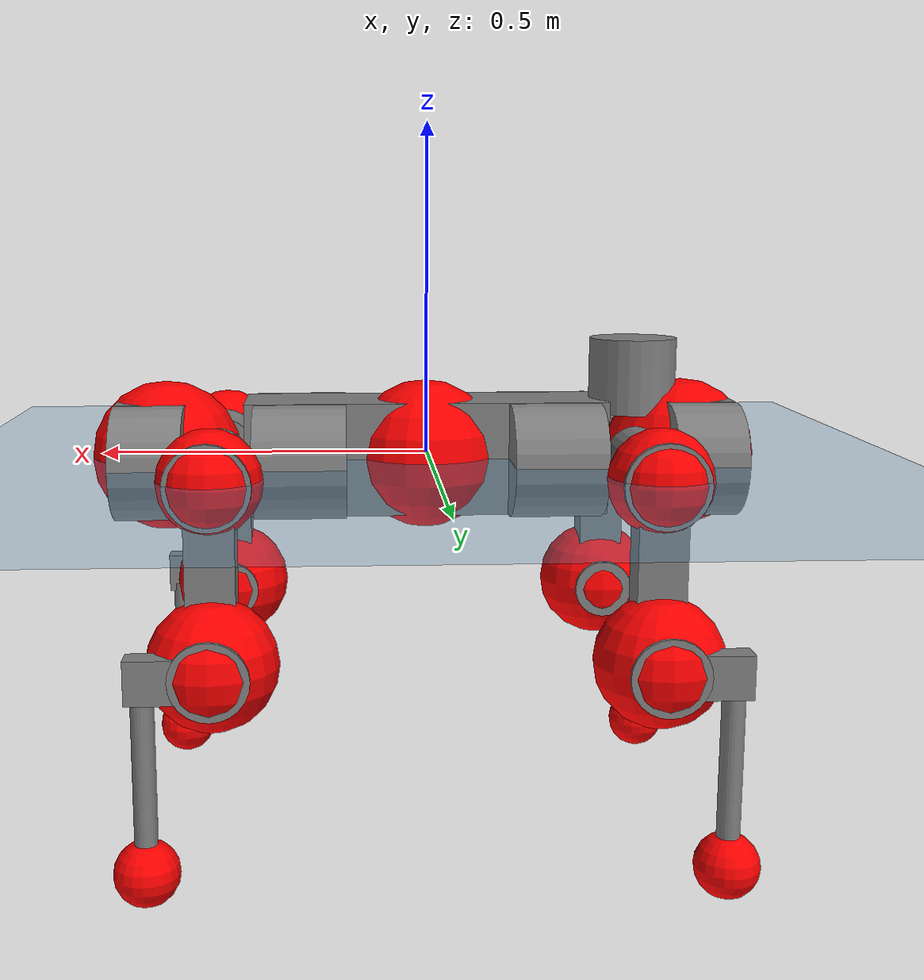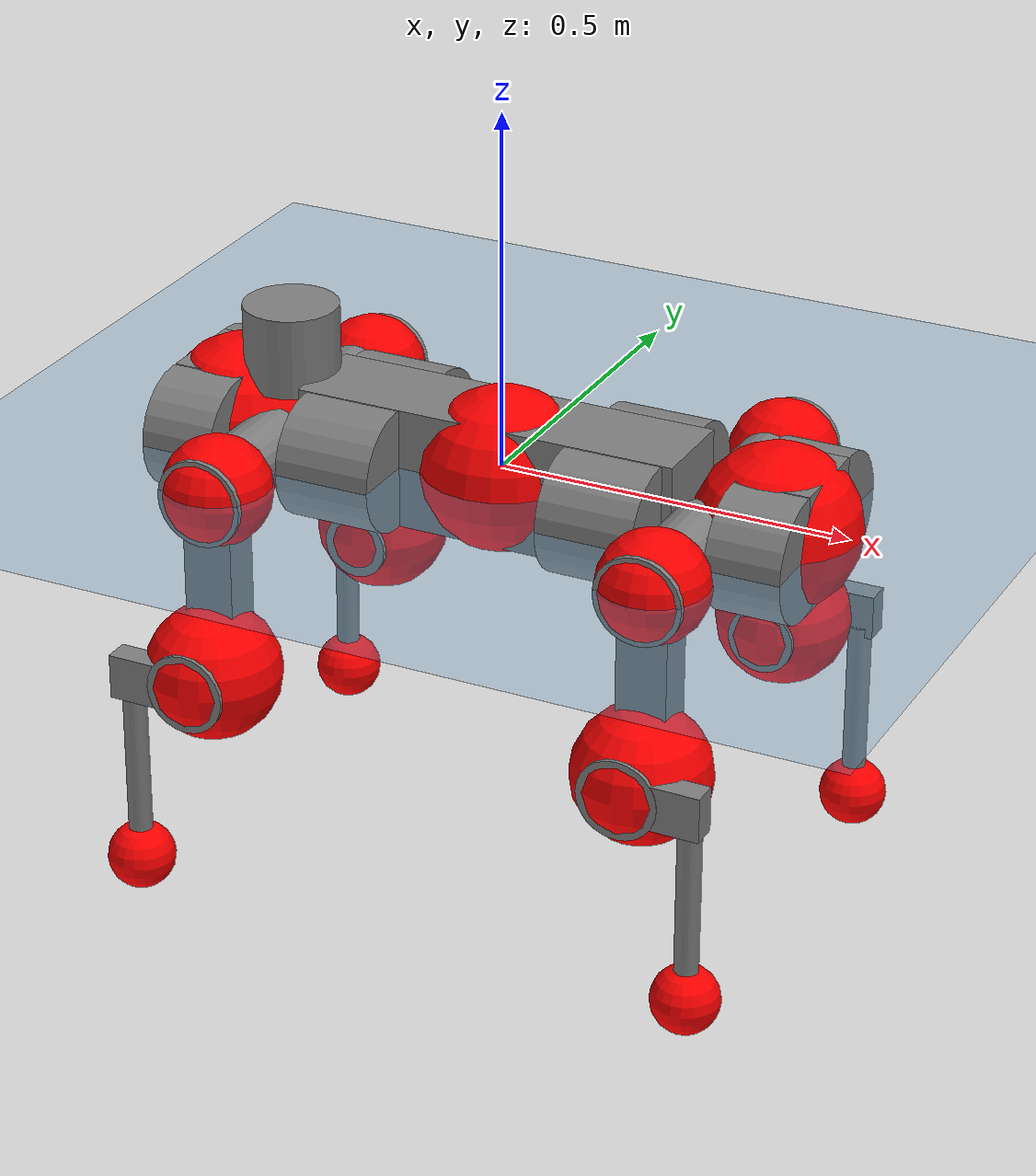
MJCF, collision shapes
<mujoco model="anymal_c">
  <compiler angle="radian" assetdir="assets" balanceinertia="true" inertiafromgeom="false"/>

  <option timestep="0.005" density="1.2" viscosity="2e-05"/>

  <size nkey="1"/>

  <visual>
    <quality shadowsize="8192"/>
    <map shadowclip="0.5"/>
  </visual>

  <default>
    <default class="/">
      <material specular="0" shininess="0.25"/>
      <geom contype="0" conaffinity="0" group="1" solref="-1000 -80"/>
      <site size="0.01 0.005 0.005" group="5"/>
      <general forcelimited="true" forcerange="-80 80" biastype="affine" gainprm="80" biasprm="0 -80 -2"/>
      <default class="anymal_c">
        <joint armature="0.01" damping="0.01" frictionloss="0.1"/>
        <default class="visual">
          <geom type="mesh" group="2"/>
          <default class="visual_zflip"/>
        </default>
        <default class="collision">
          <geom type="cylinder" group="3"/>
          <default class="foot">
            <geom size="0.03 0 0" type="sphere" condim="6" priority="1" friction="0.8 0.02 0.01" solimp="0.015 1 0.03"/>
          </default>
        </default>
      </default>
      <default class="reward_collision_sphere">
        <geom group="5" rgba="1 0 0 1"/>
      </default>
    </default>
  </default>

  <asset>
    <texture type="skybox" colorspace="auto" name="//unnamed_texture_0" builtin="gradient" rgb1="0.95 0.95 0.95" rgb2="0.95 0.95 0.95" width="100" height="600"/>
    <texture type="2d" colorspace="auto" name="texplane" builtin="checker" rgb1="0.345 0.575 0.748" rgb2="0.345 0.575 0.748" markrgb="1 1 1" width="512" height="512"/>
    <texture type="2d" colorspace="linear" name="base" file="base.png"/>
    <texture type="2d" colorspace="linear" name="top_shell" file="top_shell.png"/>
    <texture type="2d" colorspace="linear" name="bottom_shell" file="bottom_shell.png"/>
    <texture type="2d" colorspace="linear" name="remote" file="remote.png"/>
    <texture type="2d" colorspace="linear" name="hatch" file="hatch.png"/>
    <texture type="2d" colorspace="linear" name="handle" file="handle.png"/>
    <texture type="2d" colorspace="linear" name="face" file="face.png"/>
    <texture type="2d" colorspace="linear" name="battery" file="battery.png"/>
    <texture type="2d" colorspace="linear" name="lidar_cage" file="lidar_cage.png"/>
    <texture type="2d" colorspace="linear" name="depth_camera" file="depth_camera.png"/>
    <texture type="2d" colorspace="linear" name="wide_angle_camera" file="wide_angle_camera.png"/>
    <texture type="2d" colorspace="linear" name="lidar" file="lidar.png"/>
    <texture type="2d" colorspace="linear" name="drive" file="drive.png"/>
    <texture type="2d" colorspace="linear" name="hip_l" file="hip_l.png"/>
    <texture type="2d" colorspace="linear" name="shank_l" file="shank_l.png"/>
    <texture type="2d" colorspace="linear" name="foot" file="foot.png"/>
    <texture type="2d" colorspace="linear" name="thigh" file="thigh.png"/>
    <texture type="2d" colorspace="linear" name="shank_r" file="shank_r.png"/>
    <texture type="2d" colorspace="linear" name="hip_r" file="hip_r.png"/>
    <material name="MatPlane" class="/" texture="texplane" texuniform="true" texrepeat="2 2" specular="0.9" shininess="0.5"/>
    <material name="black_plastic" class="/" rgba="0.007 0.007 0.007 1"/>
    <material name="green" class="/" rgba="0.052 0.178 0.033 1"/>
    <material name="red" class="/" rgba="0.178 0.006 0.005 1"/>
    <material name="yellow" class="/" rgba="0.178 0.119 0.006 1"/>
    <material name="lwl" class="/" rgba="0.8 0.8 0.8 1"/>
    <material name="base" class="/" texture="base"/>
    <material name="top_shell" class="/" texture="top_shell"/>
    <material name="bottom_shell" class="/" texture="bottom_shell"/>
    <material name="hip_l" class="/" texture="hip_l"/>
    <material name="thigh" class="/" texture="thigh"/>
    <material name="shank_l" class="/" texture="shank_l"/>
    <material name="foot" class="/" texture="foot"/>
    <material name="hip_r" class="/" texture="hip_r"/>
    <material name="shank" class="/" texture="shank_r"/>
    <material name="hatch" class="/" texture="hatch"/>
    <material name="remote" class="/" texture="remote"/>
    <material name="handle" class="/" texture="handle"/>
    <material name="face" class="/" texture="face"/>
    <material name="depth_camera" class="/" texture="depth_camera"/>
    <material name="wide_angle_camera" class="/" texture="wide_angle_camera"/>
    <material name="battery" class="/" texture="battery"/>
    <material name="lidar_cage" class="/" texture="lidar_cage"/>
    <material name="lidar" class="/" texture="lidar"/>
    <material name="drive" class="/" texture="drive"/>
    <mesh name="base_0" class="/" file="base_0.obj"/>
    <mesh name="base_1" class="/" file="base_1.obj"/>
    <mesh name="base_2" class="/" file="base_2.obj"/>
    <mesh name="base_3" class="/" file="base_3.obj"/>
    <mesh name="base_4" class="/" file="base_4.obj"/>
    <mesh name="base_5" class="/" file="base_5.obj"/>
    <mesh name="top_shell" class="/" file="top_shell.obj"/>
    <mesh name="bottom_shell" class="/" file="bottom_shell.obj"/>
    <mesh name="remote" class="/" file="remote.obj"/>
    <mesh name="handle" class="/" file="handle.obj"/>
    <mesh name="face" class="/" file="face.obj"/>
    <mesh name="wide_angle_camera" class="/" file="wide_angle_camera.obj"/>
    <mesh name="depth_camera" class="/" file="depth_camera.obj"/>
    <mesh name="battery" class="/" file="battery.obj"/>
    <mesh name="lidar_cage" class="/" file="lidar_cage.obj"/>
    <mesh name="lidar" class="/" file="lidar.obj"/>
    <mesh name="drive" class="/" file="drive.obj"/>
    <mesh name="hip_l" class="/" file="hip_l.obj"/>
    <mesh name="thigh" class="/" file="thigh.obj"/>
    <mesh name="shank_l" class="/" file="shank_l.obj"/>
    <mesh name="foot" class="/" file="foot.obj"/>
    <mesh name="hip_r" class="/" file="hip_r.obj"/>
    <mesh name="hatch" class="/" file="hatch.obj"/>
    <mesh name="shank_r" class="/" file="shank_r.obj"/>
  </asset>

  <worldbody>
    <geom name="floor" class="/" size="100 100 0.125" type="plane" group="0" material="MatPlane"/>
    <light name="toplight_shadow" class="/" pos="0 0 5" dir="0.0990148 0.0990148 -0.990148" type="directional" ambient="0.04 0.04 0.04" diffuse="0.55 0.55 0.55" specular="0.12 0.12 0.12"/>
    <light name="toplight_fill" class="/" pos="0 0 5" dir="0.0990148 0.0990148 -0.990148" type="directional" castshadow="false" ambient="0.04 0.04 0.04" diffuse="0.3 0.3 0.3" specular="0.08 0.08 0.08"/>
    <body name="trunk" childclass="anymal_c" pos="0.00246858 -0.000795923 -0.00258818" quat="1 6.53401e-05 0.000114633 9.64948e-05">
      <inertial pos="0.00531001 -0.00123483 0.0430286" quat="0.504472 0.497212 0.507441 0.490705" mass="17.2069" diaginertia="0.338978 0.868394 0.1328"/>
      <joint name="//unnamed_joint_0" type="free" armature="0" damping="0" frictionloss="0"/>
      <geom name="//unnamed_geom_1" class="visual" material="green" mesh="base_0"/>
      <geom name="//unnamed_geom_2" class="visual" material="yellow" mesh="base_1"/>
      <geom name="//unnamed_geom_3" class="visual" material="red" mesh="base_2"/>
      <geom name="//unnamed_geom_4" class="visual" material="black_plastic" mesh="base_3"/>
      <geom name="//unnamed_geom_5" class="visual" material="lwl" mesh="base_4"/>
      <geom name="//unnamed_geom_6" class="visual" material="base" mesh="base_5"/>
      <geom name="trunk_1" class="collision" size="0.27639 0.0667149 0.0857764" type="box"/>
      <geom name="trunk_2" class="collision" size="0.0857764 0.0690976" pos="0.192588 0.0746199 0" quat="0.707107 0 0.707107 0"/>
      <geom name="trunk_3" class="collision" size="0.0857764 0.0690976" pos="-0.192588 0.0746199 0" quat="0.707107 0 0.707107 0"/>
      <geom name="trunk_4" class="collision" size="0.0857764 0.0690976" pos="0.192588 -0.0746199 0" quat="0.707107 0 0.707107 0"/>
      <geom name="trunk_5" class="collision" size="0.0857764 0.0690976" pos="-0.192588 -0.0746199 0" quat="0.707107 0 0.707107 0"/>
      <geom name="//unnamed_geom_12" class="visual" material="top_shell" mesh="top_shell"/>
      <geom name="//unnamed_geom_13" class="visual" material="bottom_shell" mesh="bottom_shell"/>
      <geom name="//unnamed_geom_14" class="visual" material="remote" mesh="remote"/>
      <geom name="//unnamed_geom_15" class="visual" material="handle" mesh="handle"/>
      <geom name="//unnamed_geom_16" class="visual" pos="0.367025 0 0" quat="1 0 0 0" material="face" mesh="face"/>
      <geom name="trunk_6" class="collision" size="0.0524189 0.0667149 0.0857764" pos="0.415725 0 0" type="box"/>
      <geom name="//unnamed_geom_18" class="collision" size="0.0857764 0.0524189" pos="0.415725 0.0746199 0" quat="0.707107 0 0.707107 0"/>
      <geom name="//unnamed_geom_19" class="collision" size="0.0857764 0.0524189" pos="0.415725 -0.0746199 0" quat="0.707107 0 0.707107 0"/>
      <geom name="//unnamed_geom_20" class="visual" pos="0.408775 0 -0.0266757" quat="0.965926 0 0.258819 0" material="depth_camera" mesh="depth_camera"/>
      <geom name="//unnamed_geom_21" class="visual" pos="0.454243 0 0.013589" material="wide_angle_camera" mesh="wide_angle_camera"/>
      <geom name="//unnamed_geom_22" class="visual_zflip" pos="-0.367025 0 0" quat="0 0 0 1" material="face" mesh="face"/>
      <geom name="trunk_7" class="collision" size="0.0524189 0.0667149 0.0857764" pos="-0.415725 0 0" quat="0 0 0 1" type="box"/>
      <geom name="//unnamed_geom_24" class="collision" size="0.0857764 0.0524189" pos="-0.415725 -0.0746199 0" quat="0 -0.707107 0 0.707107"/>
      <geom name="//unnamed_geom_25" class="collision" size="0.0857764 0.0524189" pos="-0.415725 0.0746199 0" quat="0 -0.707107 0 0.707107"/>
      <geom name="//unnamed_geom_26" class="visual" pos="-0.408775 0 -0.0266757" quat="0 -0.258819 0 0.965926" material="depth_camera" mesh="depth_camera"/>
      <geom name="//unnamed_geom_27" class="visual_zflip" pos="-0.454243 0 0.013589" quat="0 0 0 1" material="wide_angle_camera" mesh="wide_angle_camera"/>
      <geom name="//unnamed_geom_28" class="visual" material="battery" mesh="battery"/>
      <geom name="//unnamed_geom_29" class="visual" pos="0 0.0838762 0.0262008" quat="0.683013 -0.183013 0.183013 0.683013" material="depth_camera" mesh="depth_camera"/>
      <geom name="//unnamed_geom_30" class="visual" pos="0 -0.0838762 0.0262008" quat="0.683013 0.183013 0.183013 -0.683013" material="depth_camera" mesh="depth_camera"/>
      <geom name="//unnamed_geom_31" class="visual" pos="-0.322309 0 0.0667196" quat="1 0 0 0" material="lidar_cage" mesh="lidar_cage"/>
      <geom name="trunk_8" class="collision" size="0.0667149 0.0571842" pos="-0.322309 0 0.121185"/>
      <geom name="//unnamed_geom_33" class="visual" pos="-0.322309 7.09274e-05 0.129082" quat="0.707107 0 0 -0.707107" material="lidar" mesh="lidar"/>
      <geom name="//unnamed_geom_34" class="visual" pos="0.26555 0.110808 2.72981e-09" quat="0.258819 0.965926 0 0" material="drive" mesh="drive"/>
      <geom name="//unnamed_geom_35" class="visual" pos="0.26555 -0.110808 -2.72981e-09" quat="0.258819 -0.965926 0 0" material="drive" mesh="drive"/>
      <geom name="//unnamed_geom_36" class="visual" pos="-0.26555 0.110808 -2.72981e-09" quat="0 0 0.965926 -0.258819" material="drive" mesh="drive"/>
      <geom name="//unnamed_geom_37" class="visual" pos="-0.26555 -0.110808 2.72981e-09" quat="0 0 -0.965926 -0.258819" material="drive" mesh="drive"/>
      <geom name="//unnamed_geom_38" class="visual" pos="0.102714 0 0.0662657" quat="1 0 0 0" material="hatch" mesh="hatch"/>
      <geom name="//unnamed_geom_39" class="reward_collision_sphere" size="0.114368"/>
      <geom name="//unnamed_geom_40" class="reward_collision_sphere" size="0.114368" pos="0.398459 0 0"/>
      <geom name="//unnamed_geom_41" class="reward_collision_sphere" size="0.114368" pos="-0.398459 0 0"/>
      <site name="imu" pos="0.216921 0.0220562 0.0293134" size="0.00953071"/>
      <camera name="track" pos="0 -2.132 0" quat="0.707107 0.707107 0 0" mode="trackcom"/>
      <camera name="ego_camera" pos="0.398459 0 -0.03631" quat="-0.5 -0.5 0.5 0.5"/>
      <body name="LF_HIP" pos="0.264276 0.109668 0.00281196" quat="0.259908 0.965633 0.000464562 0.000514045">
        <inertial pos="0.0534408 -0.0181334 -0.00937486" quat="-0.128138 0.710143 -0.135394 0.67893" mass="2.33496" diaginertia="0.00307764 0.00683937 0.002049"/>
        <joint name="LF_HAA" pos="0 0 0" axis="0.999903 -0.0125427 0.00602147" range="-0.720462 0.509734" armature="0.00962674" damping="0.000595771" frictionloss="0.107229"/>
        <geom name="//unnamed_geom_42" class="visual" pos="0 0.000160582 -2.63755e-05" quat="0.258819 -0.965926 0 0" material="hip_l" mesh="hip_l"/>
        <geom name="//unnamed_geom_43" class="visual" pos="0.0530393 -0.0665892 -0.0372748" quat="0.183013 -0.683013 0.683013 0.183013" material="drive" mesh="drive"/>
        <geom name="//unnamed_geom_44" class="collision" size="0.0476535 0.0667149" pos="0.0530393 -0.0127491 -0.00626801" quat="-0.353553 -0.612372 0.612372 -0.353553"/>
        <body name="LF_THIGH" pos="0.0520998 -0.0755098 -0.0367459" quat="0.183077 -0.683024 0.682912 0.183281">
          <inertial pos="0.0248896 5.16966e-05 -0.224424" quat="0.993128 -0.00509101 -0.0815952 0.0837431" mass="2.55339" diaginertia="0.0161901 0.042066 0.00247306"/>
          <joint name="LF_HFE" pos="0 0 0" axis="0.999945 0.0104821 0.000104655" range="-3.13348 3.14254" armature="0.0095872" damping="0.0191719" frictionloss="0.105868"/>
          <geom name="//unnamed_geom_45" class="visual" pos="-0.00359194 -5.66006e-06 0" quat="0.707107 0 0 -0.707107" material="thigh" mesh="thigh"/>
          <geom name="//unnamed_geom_46" class="collision" size="0.0619496 0.0381228" pos="0.0354185 0 0" quat="0.5 0.5 -0.5 -0.5"/>
          <geom name="//unnamed_geom_47" class="collision" size="0.0357401 0.0285921 0.134682" pos="0.0265639 0 -0.128278" quat="0.707107 0 0 -0.707107" type="box"/>
          <geom name="//unnamed_geom_48" class="visual" pos="0.088812 0 -0.258709" quat="1 0 0 0" material="drive" mesh="drive"/>
          <geom name="//unnamed_geom_49" class="collision" size="0.0476535 0.0667149" pos="0.0268295 0 -0.258709" quat="0.707107 0 0.707107 0"/>
          <geom name="//unnamed_geom_50" class="reward_collision_sphere" size="0.0762457" pos="0.0221366 0 0"/>
          <body name="LF_SHANK" pos="0.0900797 0.00122693 -0.258449" quat="1 5.4569e-05 -0.000510209 -0.000282799">
            <inertial pos="0.00647789 -0.0632401 -0.0735681" quat="0.992659 -0.117067 -0.00492371 -0.0299701" mass="0.524062" diaginertia="0.00533251 0.0130165 0.000678075"/>
            <joint name="LF_KFE" pos="0 0 0" axis="0.999904 0.013441 -0.00324403" range="-3.1497 3.15358" armature="0.0085212" damping="0.00958095" frictionloss="0.0885868"/>
            <geom name="//unnamed_geom_51" class="visual" pos="-0.00117125 -0.00624518 0" quat="0.707107 0 0 -0.707107" material="shank_l" mesh="shank_l"/>
            <geom name="LF_kfe_act" class="collision" size="0.0571842 0.0190614" pos="0.0177093 0 0" quat="0.5 0.5 -0.5 -0.5"/>
            <geom name="//unnamed_geom_53" class="collision" size="0.0548006 0.0321661 0.0181083" pos="0.0177093 -0.0612939 0" quat="0.5 0.5 -0.5 -0.5" type="box"/>
            <geom name="//unnamed_geom_54" class="visual" pos="0.0115556 -0.0957671 -0.306792" quat="0.382683 0 0 -0.92388" material="foot" mesh="foot"/>
            <geom name="LF_calf" class="collision" size="0.0166787 0.134623" pos="0.0115553 -0.0937546 -0.153396" quat="0.707107 0 0 -0.707107"/>
            <geom name="LF_foot" class="foot" size="0.0340919" pos="0.0115553 -0.0937546 -0.286368" quat="0.707107 0 0 -0.707107"/>
            <geom name="//unnamed_geom_57" class="reward_collision_sphere" size="0.0953071" pos="-0.0442732 0 0"/>
            <geom name="//unnamed_geom_58" class="reward_collision_sphere" size="0.0476535" pos="0.0115553 -0.0937546 -0.286368"/>
            <site name="LF_foot" class="foot" pos="0.0115553 -0.0937546 -0.286368" quat="0.707107 0 0 -0.707107" size="0.00953071"/>
          </body>
        </body>
      </body>
      <body name="RF_HIP" pos="0.266445 -0.112212 0.000547742" quat="0.259632 -0.965707 0.000616256 0.000637282">
        <inertial pos="0.0501219 0.0194438 -0.00792563" quat="0.1357 0.678637 0.126845 0.710597" mass="2.30312" diaginertia="0.00315792 0.0066528 0.00201483"/>
        <joint name="RF_HAA" pos="0 0 0" axis="1 -2.67712e-05 -0.000176923" range="-0.455752 0.704083" armature="0.0108608" damping="0.0100427" frictionloss="0.0827269"/>
        <geom name="//unnamed_geom_59" class="visual" pos="0 -0.000160581 -2.63754e-05" quat="0.258819 0.965926 0 0" material="hip_r" mesh="hip_r"/>
        <geom name="//unnamed_geom_60" class="visual" pos="0.0530393 0.0665892 -0.0372748" quat="0.183013 0.683013 0.683013 -0.183013" material="drive" mesh="drive"/>
        <geom name="//unnamed_geom_61" class="collision" size="0.0476535 0.0667149" pos="0.0530393 0.0127491 -0.00626801" quat="-0.353553 0.612372 0.612372 0.353553"/>
        <body name="RF_THIGH" pos="0.0548243 0.0758235 -0.0395197" quat="0.183937 0.683092 0.682788 -0.18263">
          <inertial pos="0.0267249 0.0030568 -0.225489" quat="0.992664 -0.0112743 -0.0784938 0.091273" mass="2.67953" diaginertia="0.0157577 0.0385675 0.00250172"/>
          <joint name="RF_HFE" pos="0 0 0" axis="0.999894 0.0121587 -0.00797733" stiffness="0.0045782" range="-3.19621 3.08879" armature="0.00951737" damping="0.00787201" frictionloss="0.10719"/>
          <geom name="//unnamed_geom_62" class="visual" pos="-0.00359194 -5.66006e-06 0" quat="0.707107 0 0 -0.707107" material="thigh" mesh="thigh"/>
          <geom name="//unnamed_geom_63" class="collision" size="0.0619496 0.0381228" pos="0.0354185 0 0" quat="0.5 0.5 0.5 0.5"/>
          <geom name="//unnamed_geom_64" class="collision" size="0.0357401 0.0285921 0.134682" pos="0.0265639 0 -0.128278" quat="0.707107 0 0 0.707107" type="box"/>
          <geom name="//unnamed_geom_65" class="visual" pos="0.088812 0 -0.258709" quat="1 0 0 0" material="drive" mesh="drive"/>
          <geom name="//unnamed_geom_66" class="collision" size="0.0476535 0.0667149" pos="0.0268295 0 -0.258709" quat="0.707107 0 0.707107 0"/>
          <geom name="//unnamed_geom_67" class="reward_collision_sphere" size="0.0762457" pos="0.0221366 0 0"/>
          <body name="RF_SHANK" pos="0.0902296 0.000508813 -0.259721" quat="1 6.85918e-05 0.000204466 -0.000174661">
            <inertial pos="0.00704576 0.0651088 -0.0755469" quat="0.992849 0.117913 -0.00156813 0.0185874" mass="0.522243" diaginertia="0.00544119 0.012547 0.000683"/>
            <joint name="RF_KFE" pos="0 0 0" axis="0.999995 0.00123918 -0.00291319" range="-3.16113 3.11644" armature="0.00959002" damping="0.0176084" frictionloss="0.107019"/>
            <geom name="//unnamed_geom_68" class="visual" pos="-0.00117125 0.00624517 0" quat="0.707107 0 0 0.707107" material="shank" mesh="shank_r"/>
            <geom name="RF_kfe_act" class="collision" size="0.0571842 0.0190614" pos="0.0177093 0 0" quat="0.5 0.5 0.5 0.5"/>
            <geom name="//unnamed_geom_70" class="collision" size="0.0548006 0.0321661 0.0181083" pos="0.0177093 0.0612939 0" quat="0.5 0.5 0.5 0.5" type="box"/>
            <geom name="//unnamed_geom_71" class="visual" pos="0.011555 0.0957671 -0.306792" quat="0.382683 0 0 0.92388" material="foot" mesh="foot"/>
            <geom name="RF_calf" class="collision" size="0.0166787 0.134623" pos="0.0115553 0.0937546 -0.153396" quat="0.707107 0 0 0.707107"/>
            <geom name="RF_foot" class="foot" size="0.0296312" pos="0.0115553 0.0937546 -0.286368" quat="0.707107 0 0 0.707107"/>
            <geom name="//unnamed_geom_74" class="reward_collision_sphere" size="0.0953071" pos="-0.0442732 0 0"/>
            <geom name="//unnamed_geom_75" class="reward_collision_sphere" size="0.0476535" pos="0.0115553 0.0937546 -0.286368"/>
            <site name="RF_foot" class="foot" pos="0.0115553 0.0937546 -0.286368" quat="0.707107 0 0 0.707107" size="0.00953071"/>
          </body>
        </body>
      </body>
      <body name="LH_HIP" pos="-0.26604 0.113845 0.00172623" quat="-0.000603683 0.0018062 0.965763 -0.25942">
        <inertial pos="0.0477411 0.0137174 -0.00691998" quat="0.135684 0.679017 0.129195 0.709813" mass="2.46927" diaginertia="0.00316962 0.00679418 0.00195963"/>
        <joint name="LH_HAA" pos="0 0 0" axis="0.999968 -0.00139417 0.00789728" stiffness="0.00321233" range="-0.535505 0.752616" armature="0.00955395" damping="0.0108197" frictionloss="0.107757"/>
        <geom name="//unnamed_geom_76" class="visual" pos="0 -0.000160581 -2.63754e-05" quat="-0.258819 -0.965926 0 0" material="hip_r" mesh="hip_r"/>
        <geom name="//unnamed_geom_77" class="visual" pos="0.0530393 0.0665892 -0.0372748" quat="0.183013 0.683013 0.683013 -0.183013" material="drive" mesh="drive"/>
        <geom name="//unnamed_geom_78" class="collision" size="0.0476535 0.0667149" pos="0.0530393 0.0127491 -0.00626801" quat="-0.353553 0.612372 0.612372 0.353553"/>
        <body name="LH_THIGH" pos="0.0548005 0.0799842 -0.0377981" quat="0.182957 0.682446 0.683367 -0.183855">
          <inertial pos="0.0281656 -0.00198739 -0.224637" quat="0.993406 -0.00592375 -0.0761005 0.08555" mass="2.68579" diaginertia="0.0170318 0.041248 0.00266995"/>
          <joint name="LH_HFE" pos="0 0 0" axis="0.999988 0.00318144 -0.00367929" range="-3.17504 3.15871" armature="0.00906763" damping="0.0186695" frictionloss="0.0827406"/>
          <geom name="//unnamed_geom_79" class="visual" pos="-0.00359194 -5.66006e-06 0" quat="0.707107 0 0 -0.707107" material="thigh" mesh="thigh"/>
          <geom name="//unnamed_geom_80" class="collision" size="0.0619496 0.0381228" pos="0.0354185 0 0" quat="0.5 0.5 -0.5 -0.5"/>
          <geom name="//unnamed_geom_81" class="collision" size="0.0357401 0.0285921 0.134682" pos="0.0265639 0 -0.128278" quat="0.707107 0 0 -0.707107" type="box"/>
          <geom name="//unnamed_geom_82" class="visual" pos="0.088812 0 -0.258709" quat="1 0 0 0" material="drive" mesh="drive"/>
          <geom name="//unnamed_geom_83" class="collision" size="0.0476535 0.0667149" pos="0.0268295 0 -0.258709" quat="0.707107 0 0.707107 0"/>
          <geom name="//unnamed_geom_84" class="reward_collision_sphere" size="0.0762457" pos="0.0221366 0 0"/>
          <body name="LH_SHANK" pos="0.0918188 0.000252377 -0.257019" quat="1 -0.0002468 1.56374e-05 -0.000405901">
            <inertial pos="0.00509118 0.0651755 -0.0714078" quat="0.992915 0.116096 -0.0019215 0.0252627" mass="0.509789" diaginertia="0.0055153 0.0125104 0.000683525"/>
            <joint name="LH_KFE" pos="0 0 0" axis="0.999952 -0.00526618 -0.00824075" range="-3.19639 3.14472" armature="0.00851257" damping="0.0166733" frictionloss="0.0987962"/>
            <geom name="//unnamed_geom_85" class="visual" pos="-0.00117125 0.00624517 0" quat="-0.707107 0 0 -0.707107" material="shank" mesh="shank_r"/>
            <geom name="LH_kfe_act" class="collision" size="0.0571842 0.0190614" pos="0.0177093 0 0" quat="0.5 0.5 -0.5 -0.5"/>
            <geom name="//unnamed_geom_87" class="collision" size="0.0548006 0.0321661 0.0181083" pos="0.0177093 0.0612939 0" quat="0.5 0.5 -0.5 -0.5" type="box"/>
            <geom name="//unnamed_geom_88" class="visual" pos="0.011555 0.0957671 -0.306792" quat="-0.382683 0 0 -0.92388" material="foot" mesh="foot"/>
            <geom name="LH_calf" class="collision" size="0.0166787 0.134623" pos="0.0115553 0.0937546 -0.153396" quat="0.707107 0 0 -0.707107"/>
            <geom name="LH_foot" class="foot" size="0.0300128" pos="0.0115553 0.0937546 -0.286368" quat="0.707107 0 0 -0.707107"/>
            <geom name="//unnamed_geom_91" class="reward_collision_sphere" size="0.0953071" pos="-0.0442732 0 0"/>
            <geom name="//unnamed_geom_92" class="reward_collision_sphere" size="0.0476535" pos="0.0115553 0.0937546 -0.286368"/>
            <site name="LH_foot" class="foot" pos="0.0115553 0.0937546 -0.286368" quat="0.707107 0 0 -0.707107" size="0.00953071"/>
          </body>
        </body>
      </body>
      <body name="RH_HIP" pos="-0.264317 -0.108276 -0.000520859" quat="-0.000437985 -0.000295925 -0.965861 -0.259061">
        <inertial pos="0.0501963 -0.0164728 -0.00802116" quat="-0.127547 0.711272 -0.127401 0.679406" mass="2.43753" diaginertia="0.00329122 0.00695794 0.00198366"/>
        <joint name="RH_HAA" pos="0 0 0" axis="0.99998 -0.00608754 0.00154695" range="-0.690456 0.472665" armature="0.00833786" damping="0" frictionloss="0.100267"/>
        <geom name="//unnamed_geom_93" class="visual" pos="0 0.000160582 -2.63755e-05" quat="-0.258819 0.965926 0 0" material="hip_l" mesh="hip_l"/>
        <geom name="//unnamed_geom_94" class="visual" pos="0.0530393 -0.0665892 -0.0372748" quat="-0.183013 0.683013 -0.683013 -0.183013" material="drive" mesh="drive"/>
        <geom name="//unnamed_geom_95" class="collision" size="0.0476535 0.0667149" pos="0.0530393 -0.0127491 -0.00626801" quat="0.353553 0.612372 -0.612372 0.353553"/>
        <body name="RH_THIGH" pos="0.0529259 -0.0787716 -0.0370222" quat="-0.181956 0.683132 -0.682906 -0.184016">
          <inertial pos="0.0268566 -0.00227932 -0.222813" quat="0.993161 -0.00371506 -0.0787949 0.0860771" mass="2.49789" diaginertia="0.0154217 0.0401613 0.00254416"/>
          <joint name="RH_HFE" pos="0 0 0" axis="0.999934 0.00787559 0.00840008" range="-3.10746 3.172" armature="0.0103839" damping="0" frictionloss="0.0834056"/>
          <geom name="//unnamed_geom_96" class="visual" pos="-0.00359194 -5.66006e-06 0" quat="0.707107 0 0 -0.707107" material="thigh" mesh="thigh"/>
          <geom name="//unnamed_geom_97" class="collision" size="0.0619496 0.0381228" pos="0.0354185 0 0" quat="0.5 0.5 0.5 0.5"/>
          <geom name="//unnamed_geom_98" class="collision" size="0.0357401 0.0285921 0.134682" pos="0.0265639 0 -0.128278" quat="0.707107 0 0 0.707107" type="box"/>
          <geom name="//unnamed_geom_99" class="visual" pos="0.088812 0 -0.258709" quat="1 0 0 0" material="drive" mesh="drive"/>
          <geom name="//unnamed_geom_100" class="collision" size="0.0476535 0.0667149" pos="0.0268295 0 -0.258709" quat="0.707107 0 0.707107 0"/>
          <geom name="//unnamed_geom_101" class="reward_collision_sphere" size="0.0762457" pos="0.0221366 0 0"/>
          <body name="RH_SHANK" pos="0.0927042 0.000562779 -0.259548" quat="1 0.000628617 0.000368938 -0.000472112">
            <inertial pos="0.00124604 -0.0650689 -0.0713926" quat="0.992147 -0.120409 -0.0112987 -0.0318983" mass="0.505724" diaginertia="0.00586175 0.0130674 0.000723537"/>
            <joint name="RH_KFE" pos="0 0 0" axis="0.999751 -0.022305 -1.97119e-05" range="-3.12608 3.06199" armature="0.00951027" damping="0.0149947" frictionloss="0.107462"/>
            <geom name="//unnamed_geom_102" class="visual" pos="-0.00117125 -0.00624518 0" quat="0.707107 0 0 -0.707107" material="shank_l" mesh="shank_l"/>
            <geom name="RH_kfe_act" class="collision" size="0.0571842 0.0190614" pos="0.0177093 0 0" quat="0.5 0.5 0.5 0.5"/>
            <geom name="//unnamed_geom_104" class="collision" size="0.0548006 0.0321661 0.0181083" pos="0.0177093 -0.0612939 0" quat="0.5 0.5 0.5 0.5" type="box"/>
            <geom name="//unnamed_geom_105" class="visual" pos="0.0115556 -0.0957671 -0.306792" quat="0.382683 0 0 -0.92388" material="foot" mesh="foot"/>
            <geom name="RH_calf" class="collision" size="0.0166787 0.134623" pos="0.0115553 -0.0937546 -0.153396" quat="0.707107 0 0 0.707107"/>
            <geom name="RH_foot" class="foot" size="0.0240131" pos="0.0115553 -0.0937546 -0.286368" quat="0.707107 0 0 0.707107"/>
            <geom name="//unnamed_geom_108" class="reward_collision_sphere" size="0.0953071" pos="-0.0442732 0 0"/>
            <geom name="//unnamed_geom_109" class="reward_collision_sphere" size="0.0476535" pos="0.0115553 -0.0937546 -0.286368"/>
            <site name="RH_foot" class="foot" pos="0.0115553 -0.0937546 -0.286368" quat="0.707107 0 0 0.707107" size="0.00953071"/>
          </body>
        </body>
      </body>
    </body>
  </worldbody>

  <contact>
    <pair class="/" geom1="floor" geom2="LF_foot" name="//unnamed_contact_0"/>
    <pair class="/" geom1="floor" geom2="RF_foot" name="//unnamed_contact_1"/>
    <pair class="/" geom1="floor" geom2="LH_foot" name="//unnamed_contact_2"/>
    <pair class="/" geom1="floor" geom2="RH_foot" name="//unnamed_contact_3"/>
  </contact>

  <actuator>
    <general name="LF_HAA" class="/" joint="LF_HAA" forcerange="-78.4769 78.4769" gainprm="76.6461" biasprm="0 -76.6461 -2.12975"/>
    <general name="LF_HFE" class="/" joint="LF_HFE" forcerange="-70.3409 70.3409" gainprm="76.6461" biasprm="0 -76.6461 -2.12975"/>
    <general name="LF_KFE" class="/" joint="LF_KFE" forcerange="-77.4734 77.4734" gainprm="76.6461" biasprm="0 -76.6461 -2.12975"/>
    <general name="RF_HAA" class="/" joint="RF_HAA" forcerange="-66.7044 66.7044" gainprm="76.6461" biasprm="0 -76.6461 -2.12975"/>
    <general name="RF_HFE" class="/" joint="RF_HFE" forcerange="-75.1747 75.1747" gainprm="76.6461" biasprm="0 -76.6461 -2.12975"/>
    <general name="RF_KFE" class="/" joint="RF_KFE" forcerange="-75.2689 75.2689" gainprm="76.6461" biasprm="0 -76.6461 -2.12975"/>
    <general name="LH_HAA" class="/" joint="LH_HAA" forcerange="-75.4921 75.4921" gainprm="76.6461" biasprm="0 -76.6461 -2.12975"/>
    <general name="LH_HFE" class="/" joint="LH_HFE" forcerange="-75.0854 75.0854" gainprm="76.6461" biasprm="0 -76.6461 -2.12975"/>
    <general name="LH_KFE" class="/" joint="LH_KFE" forcerange="-78.1089 78.1089" gainprm="76.6461" biasprm="0 -76.6461 -2.12975"/>
    <general name="RH_HAA" class="/" joint="RH_HAA" forcerange="-81.3025 81.3025" gainprm="76.6461" biasprm="0 -76.6461 -2.12975"/>
    <general name="RH_HFE" class="/" joint="RH_HFE" forcerange="-69.5635 69.5635" gainprm="76.6461" biasprm="0 -76.6461 -2.12975"/>
    <general name="RH_KFE" class="/" joint="RH_KFE" forcerange="-71.6003 71.6003" gainprm="76.6461" biasprm="0 -76.6461 -2.12975"/>
  </actuator>

  <sensor>
    <gyro site="imu" name="imu_angular_velocity"/>
    <velocimeter site="imu" name="imu_linear_velocity"/>
    <framelinvel objtype="site" objname="LF_foot" name="LF_foot_global_linear_velocity"/>
    <framelinvel objtype="site" objname="RF_foot" name="RF_foot_global_linear_velocity"/>
    <framelinvel objtype="site" objname="LH_foot" name="LH_foot_global_linear_velocity"/>
    <framelinvel objtype="site" objname="RH_foot" name="RH_foot_global_linear_velocity"/>
  </sensor>

  <keyframe>
    <key name="home" qpos="0 0 0.55 1 0 0 0 0 0.4 -0.8 0 -0.4 0.8 0 -0.4 0.8 0 0.4 -0.8"/>
  </keyframe>
</mujoco>
